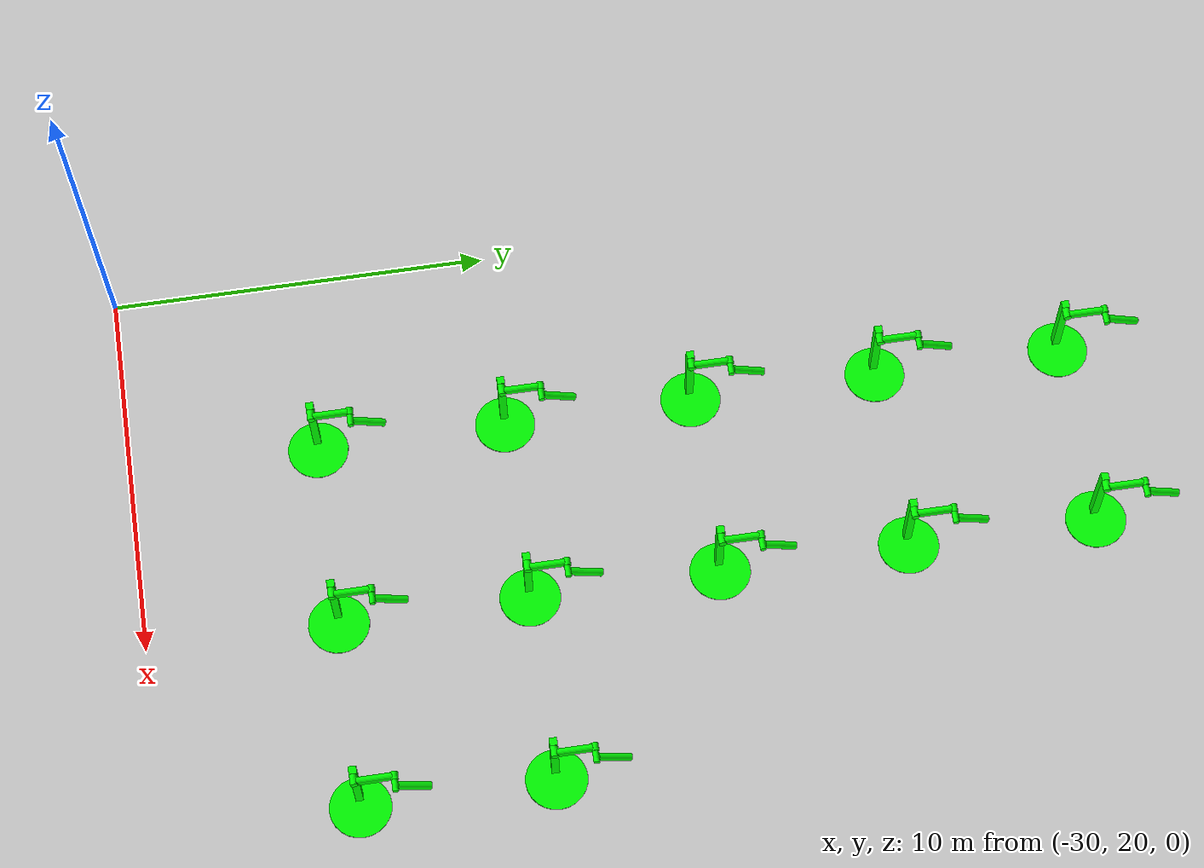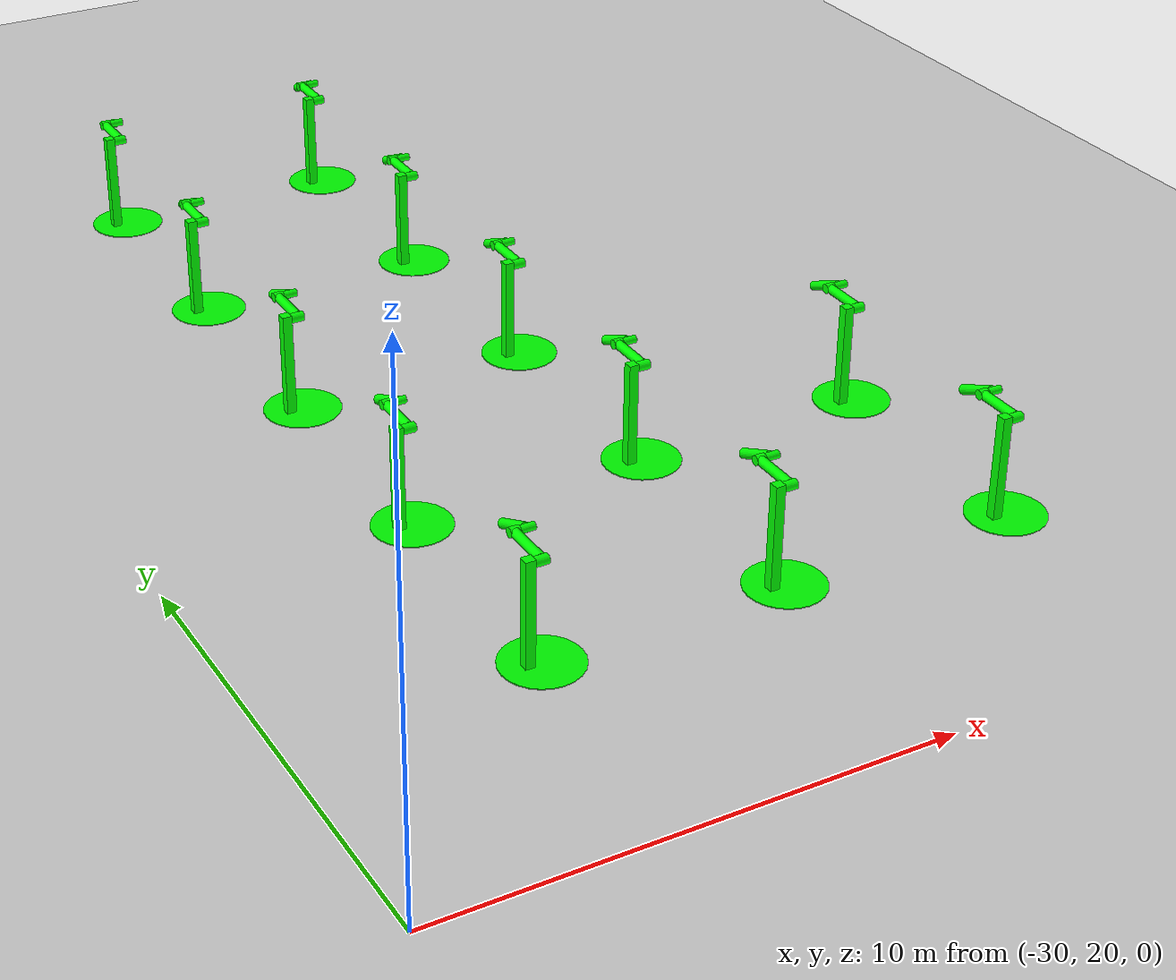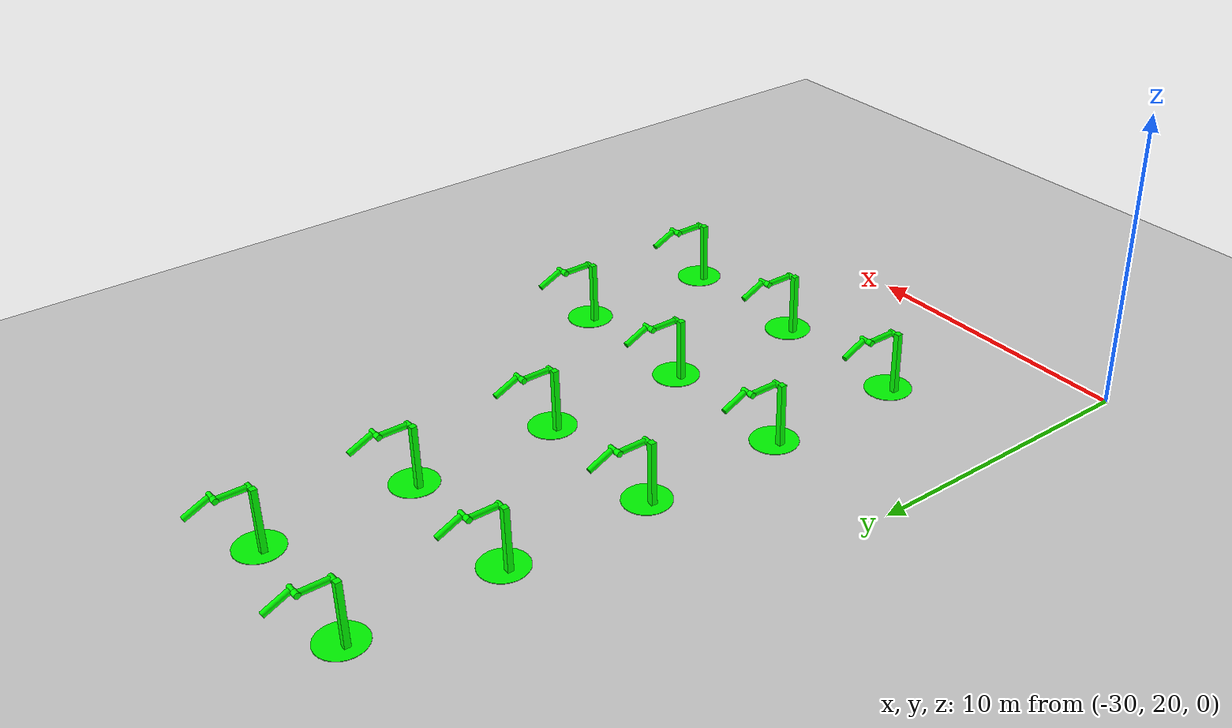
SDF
<sdf version="1.6">
 <world name="double_pendulums">
  <model name="ground_plane">
   <static>true</static>
   <link name="link">
    <collision name="collision">
     <geometry><plane><normal>0 0 1</normal><size>100 100</size></plane></geometry>
    </collision>
    <visual name="visual">
     <geometry><plane><normal>0 0 1</normal><size>100 100</size></plane></geometry>
     <material>
      <ambient>0.8 0.8 0.8 1</ambient>
      <diffuse>0.8 0.8 0.8 1</diffuse>
      <specular>0.8 0.8 0.8 1</specular>
     </material>
    </visual>
   </link>
  </model>
  <model name="dbl_pendulum_50">
   <pose>-25 25 0 0 0 0</pose>
   <link name="base">
    <inertial><mass>100</mass></inertial>
    <visual name="vis_plate_on_ground">
     <pose>0 0 0.01 0 0 0</pose>
     <geometry><cylinder><radius>0.8</radius><length>0.02</length></cylinder></geometry>
     <material><ambient>0 1 0 1</ambient><diffuse>0 1 0 1</diffuse><specular>0 1 0 1</specular></material>
    </visual>
    <visual name="vis_pole">
     <pose>-0.275 0 1.1 0 0 0</pose>
     <geometry><box><size>0.2 0.2 2.2</size></box></geometry>
     <material><ambient>0 1 0 1</ambient><diffuse>0 1 0 1</diffuse><specular>0 1 0 1</specular></material>
    </visual>
    <collision name="col_plate_on_ground">
     <pose>0 0 0.01 0 0 0</pose>
     <geometry><cylinder><radius>0.8</radius><length>0.02</length></cylinder></geometry>
    </collision>
    <collision name="col_pole">
     <pose>-0.275 0 1.1 0 0 0</pose>
     <geometry><box><size>0.2 0.2 2.2</size></box></geometry>
    </collision>
   </link>
   <link name="upper_link">
    <pose>0 0 2.1 -1.5708 0 0</pose>
    <inertial><pose>0 0 0.5 0 0 0</pose></inertial>
    <visual name="vis_upper_joint">
     <pose>-0.05 0 0 0 1.5708 0</pose>
     <geometry><cylinder><radius>0.1</radius><length>0.3</length></cylinder></geometry>
     <material><ambient>0 1 0 1</ambient><diffuse>0 1 0 1</diffuse><specular>0 1 0 1</specular></material>
    </visual>
    <visual name="vis_lower_joint">
     <pose>0 0 1.0 0 1.5708 0</pose>
     <geometry><cylinder><radius>0.1</radius><length>0.2</length></cylinder></geometry>
     <material><ambient>0 1 0 1</ambient><diffuse>0 1 0 1</diffuse><specular>0 1 0 1</specular></material>
    </visual>
    <visual name="vis_cylinder">
     <pose>0 0 0.5 0 0 0</pose>
     <geometry><cylinder><radius>0.1</radius><length>0.9</length></cylinder></geometry>
     <material><ambient>0 1 0 1</ambient><diffuse>0 1 0 1</diffuse><specular>0 1 0 1</specular></material>
    </visual>
    <collision name="col_upper_joint">
     <pose>-0.05 0 0 0 1.5708 0</pose>
     <geometry><cylinder><radius>0.1</radius><length>0.3</length></cylinder></geometry>
    </collision>
    <collision name="col_lower_joint">
     <pose>0 0 1.0 0 1.5708 0</pose>
     <geometry><cylinder><radius>0.1</radius><length>0.2</length></cylinder></geometry>
    </collision>
    <collision name="col_cylinder">
     <pose>0 0 0.5 0 0 0</pose>
     <geometry><cylinder><radius>0.1</radius><length>0.9</length></cylinder></geometry>
    </collision>
   </link>
   <link name="lower_link">
    <pose>0.25 1.0 2.1 -2 0 0</pose>
    <inertial><pose>0 0 0.5 0 0 0</pose></inertial>
    <visual name="vis_lower_joint">
     <pose>0 0 0 0 1.5708 0</pose>
     <geometry><cylinder><radius>0.08</radius><length>0.3</length></cylinder></geometry>
     <material><ambient>0 1 0 1</ambient><diffuse>0 1 0 1</diffuse><specular>0 1 0 1</specular></material>
    </visual>
    <visual name="vis_cylinder">
     <pose>0 0 0.5 0 0 0</pose>
     <geometry><cylinder><radius>0.1</radius><length>0.9</length></cylinder></geometry>
     <material><ambient>0 1 0 1</ambient><diffuse>0 1 0 1</diffuse><specular>0 1 0 1</specular></material>
    </visual>
    <collision name="col_lower_joint">
     <pose>0 0 0 0 1.5708 0</pose>
     <geometry><cylinder><radius>0.08</radius><length>0.3</length></cylinder></geometry>
    </collision>
    <collision name="col_cylinder">
     <pose>0 0 0.5 0 0 0</pose>
     <geometry><cylinder><radius>0.1</radius><length>0.9</length></cylinder></geometry>
    </collision>
   </link>
   <joint name="upper_joint" type="revolute">
    <parent>base</parent>
    <child>upper_link</child>
    <axis><xyz>1.0 0 0</xyz></axis>
   </joint>
   <joint name="lower_joint" type="revolute">
    <parent>upper_link</parent>
    <child>lower_link</child>
    <axis><xyz>1.0 0 0</xyz></axis>
   </joint>
  </model>
  <model name="dbl_pendulum_51">
   <pose>-20 25 0 0 0 0</pose>
   <link name="base">
    <inertial><mass>100</mass></inertial>
    <visual name="vis_plate_on_ground">
     <pose>0 0 0.01 0 0 0</pose>
     <geometry><cylinder><radius>0.8</radius><length>0.02</length></cylinder></geometry>
     <material><ambient>0 1 0 1</ambient><diffuse>0 1 0 1</diffuse><specular>0 1 0 1</specular></material>
    </visual>
    <visual name="vis_pole">
     <pose>-0.275 0 1.1 0 0 0</pose>
     <geometry><box><size>0.2 0.2 2.2</size></box></geometry>
     <material><ambient>0 1 0 1</ambient><diffuse>0 1 0 1</diffuse><specular>0 1 0 1</specular></material>
    </visual>
    <collision name="col_plate_on_ground">
     <pose>0 0 0.01 0 0 0</pose>
     <geometry><cylinder><radius>0.8</radius><length>0.02</length></cylinder></geometry>
    </collision>
    <collision name="col_pole">
     <pose>-0.275 0 1.1 0 0 0</pose>
     <geometry><box><size>0.2 0.2 2.2</size></box></geometry>
    </collision>
   </link>
   <link name="upper_link">
    <pose>0 0 2.1 -1.5708 0 0</pose>
    <inertial><pose>0 0 0.5 0 0 0</pose></inertial>
    <visual name="vis_upper_joint">
     <pose>-0.05 0 0 0 1.5708 0</pose>
     <geometry><cylinder><radius>0.1</radius><length>0.3</length></cylinder></geometry>
     <material><ambient>0 1 0 1</ambient><diffuse>0 1 0 1</diffuse><specular>0 1 0 1</specular></material>
    </visual>
    <visual name="vis_lower_joint">
     <pose>0 0 1.0 0 1.5708 0</pose>
     <geometry><cylinder><radius>0.1</radius><length>0.2</length></cylinder></geometry>
     <material><ambient>0 1 0 1</ambient><diffuse>0 1 0 1</diffuse><specular>0 1 0 1</specular></material>
    </visual>
    <visual name="vis_cylinder">
     <pose>0 0 0.5 0 0 0</pose>
     <geometry><cylinder><radius>0.1</radius><length>0.9</length></cylinder></geometry>
     <material><ambient>0 1 0 1</ambient><diffuse>0 1 0 1</diffuse><specular>0 1 0 1</specular></material>
    </visual>
    <collision name="col_upper_joint">
     <pose>-0.05 0 0 0 1.5708 0</pose>
     <geometry><cylinder><radius>0.1</radius><length>0.3</length></cylinder></geometry>
    </collision>
    <collision name="col_lower_joint">
     <pose>0 0 1.0 0 1.5708 0</pose>
     <geometry><cylinder><radius>0.1</radius><length>0.2</length></cylinder></geometry>
    </collision>
    <collision name="col_cylinder">
     <pose>0 0 0.5 0 0 0</pose>
     <geometry><cylinder><radius>0.1</radius><length>0.9</length></cylinder></geometry>
    </collision>
   </link>
   <link name="lower_link">
    <pose>0.25 1.0 2.1 -2 0 0</pose>
    <inertial><pose>0 0 0.5 0 0 0</pose></inertial>
    <visual name="vis_lower_joint">
     <pose>0 0 0 0 1.5708 0</pose>
     <geometry><cylinder><radius>0.08</radius><length>0.3</length></cylinder></geometry>
     <material><ambient>0 1 0 1</ambient><diffuse>0 1 0 1</diffuse><specular>0 1 0 1</specular></material>
    </visual>
    <visual name="vis_cylinder">
     <pose>0 0 0.5 0 0 0</pose>
     <geometry><cylinder><radius>0.1</radius><length>0.9</length></cylinder></geometry>
     <material><ambient>0 1 0 1</ambient><diffuse>0 1 0 1</diffuse><specular>0 1 0 1</specular></material>
    </visual>
    <collision name="col_lower_joint">
     <pose>0 0 0 0 1.5708 0</pose>
     <geometry><cylinder><radius>0.08</radius><length>0.3</length></cylinder></geometry>
    </collision>
    <collision name="col_cylinder">
     <pose>0 0 0.5 0 0 0</pose>
     <geometry><cylinder><radius>0.1</radius><length>0.9</length></cylinder></geometry>
    </collision>
   </link>
   <joint name="upper_joint" type="revolute">
    <parent>base</parent>
    <child>upper_link</child>
    <axis><xyz>1.0 0 0</xyz></axis>
   </joint>
   <joint name="lower_joint" type="revolute">
    <parent>upper_link</parent>
    <child>lower_link</child>
    <axis><xyz>1.0 0 0</xyz></axis>
   </joint>
  </model>
  <model name="dbl_pendulum_52">
   <pose>-15 25 0 0 0 0</pose>
   <link name="base">
    <inertial><mass>100</mass></inertial>
    <visual name="vis_plate_on_ground">
     <pose>0 0 0.01 0 0 0</pose>
     <geometry><cylinder><radius>0.8</radius><length>0.02</length></cylinder></geometry>
     <material><ambient>0 1 0 1</ambient><diffuse>0 1 0 1</diffuse><specular>0 1 0 1</specular></material>
    </visual>
    <visual name="vis_pole">
     <pose>-0.275 0 1.1 0 0 0</pose>
     <geometry><box><size>0.2 0.2 2.2</size></box></geometry>
     <material><ambient>0 1 0 1</ambient><diffuse>0 1 0 1</diffuse><specular>0 1 0 1</specular></material>
    </visual>
    <collision name="col_plate_on_ground">
     <pose>0 0 0.01 0 0 0</pose>
     <geometry><cylinder><radius>0.8</radius><length>0.02</length></cylinder></geometry>
    </collision>
    <collision name="col_pole">
     <pose>-0.275 0 1.1 0 0 0</pose>
     <geometry><box><size>0.2 0.2 2.2</size></box></geometry>
    </collision>
   </link>
   <link name="upper_link">
    <pose>0 0 2.1 -1.5708 0 0</pose>
    <inertial><pose>0 0 0.5 0 0 0</pose></inertial>
    <visual name="vis_upper_joint">
     <pose>-0.05 0 0 0 1.5708 0</pose>
     <geometry><cylinder><radius>0.1</radius><length>0.3</length></cylinder></geometry>
     <material><ambient>0 1 0 1</ambient><diffuse>0 1 0 1</diffuse><specular>0 1 0 1</specular></material>
    </visual>
    <visual name="vis_lower_joint">
     <pose>0 0 1.0 0 1.5708 0</pose>
     <geometry><cylinder><radius>0.1</radius><length>0.2</length></cylinder></geometry>
     <material><ambient>0 1 0 1</ambient><diffuse>0 1 0 1</diffuse><specular>0 1 0 1</specular></material>
    </visual>
    <visual name="vis_cylinder">
     <pose>0 0 0.5 0 0 0</pose>
     <geometry><cylinder><radius>0.1</radius><length>0.9</length></cylinder></geometry>
     <material><ambient>0 1 0 1</ambient><diffuse>0 1 0 1</diffuse><specular>0 1 0 1</specular></material>
    </visual>
    <collision name="col_upper_joint">
     <pose>-0.05 0 0 0 1.5708 0</pose>
     <geometry><cylinder><radius>0.1</radius><length>0.3</length></cylinder></geometry>
    </collision>
    <collision name="col_lower_joint">
     <pose>0 0 1.0 0 1.5708 0</pose>
     <geometry><cylinder><radius>0.1</radius><length>0.2</length></cylinder></geometry>
    </collision>
    <collision name="col_cylinder">
     <pose>0 0 0.5 0 0 0</pose>
     <geometry><cylinder><radius>0.1</radius><length>0.9</length></cylinder></geometry>
    </collision>
   </link>
   <link name="lower_link">
    <pose>0.25 1.0 2.1 -2 0 0</pose>
    <inertial><pose>0 0 0.5 0 0 0</pose></inertial>
    <visual name="vis_lower_joint">
     <pose>0 0 0 0 1.5708 0</pose>
     <geometry><cylinder><radius>0.08</radius><length>0.3</length></cylinder></geometry>
     <material><ambient>0 1 0 1</ambient><diffuse>0 1 0 1</diffuse><specular>0 1 0 1</specular></material>
    </visual>
    <visual name="vis_cylinder">
     <pose>0 0 0.5 0 0 0</pose>
     <geometry><cylinder><radius>0.1</radius><length>0.9</length></cylinder></geometry>
     <material><ambient>0 1 0 1</ambient><diffuse>0 1 0 1</diffuse><specular>0 1 0 1</specular></material>
    </visual>
    <collision name="col_lower_joint">
     <pose>0 0 0 0 1.5708 0</pose>
     <geometry><cylinder><radius>0.08</radius><length>0.3</length></cylinder></geometry>
    </collision>
    <collision name="col_cylinder">
     <pose>0 0 0.5 0 0 0</pose>
     <geometry><cylinder><radius>0.1</radius><length>0.9</length></cylinder></geometry>
    </collision>
   </link>
   <joint name="upper_joint" type="revolute">
    <parent>base</parent>
    <child>upper_link</child>
    <axis><xyz>1.0 0 0</xyz></axis>
   </joint>
   <joint name="lower_joint" type="revolute">
    <parent>upper_link</parent>
    <child>lower_link</child>
    <axis><xyz>1.0 0 0</xyz></axis>
   </joint>
  </model>
  <model name="dbl_pendulum_60">
   <pose>-25 30 0 0 0 0</pose>
   <link name="base">
    <inertial><mass>100</mass></inertial>
    <visual name="vis_plate_on_ground">
     <pose>0 0 0.01 0 0 0</pose>
     <geometry><cylinder><radius>0.8</radius><length>0.02</length></cylinder></geometry>
     <material><ambient>0 1 0 1</ambient><diffuse>0 1 0 1</diffuse><specular>0 1 0 1</specular></material>
    </visual>
    <visual name="vis_pole">
     <pose>-0.275 0 1.1 0 0 0</pose>
     <geometry><box><size>0.2 0.2 2.2</size></box></geometry>
     <material><ambient>0 1 0 1</ambient><diffuse>0 1 0 1</diffuse><specular>0 1 0 1</specular></material>
    </visual>
    <collision name="col_plate_on_ground">
     <pose>0 0 0.01 0 0 0</pose>
     <geometry><cylinder><radius>0.8</radius><length>0.02</length></cylinder></geometry>
    </collision>
    <collision name="col_pole">
     <pose>-0.275 0 1.1 0 0 0</pose>
     <geometry><box><size>0.2 0.2 2.2</size></box></geometry>
    </collision>
   </link>
   <link name="upper_link">
    <pose>0 0 2.1 -1.5708 0 0</pose>
    <inertial><pose>0 0 0.5 0 0 0</pose></inertial>
    <visual name="vis_upper_joint">
     <pose>-0.05 0 0 0 1.5708 0</pose>
     <geometry><cylinder><radius>0.1</radius><length>0.3</length></cylinder></geometry>
     <material><ambient>0 1 0 1</ambient><diffuse>0 1 0 1</diffuse><specular>0 1 0 1</specular></material>
    </visual>
    <visual name="vis_lower_joint">
     <pose>0 0 1.0 0 1.5708 0</pose>
     <geometry><cylinder><radius>0.1</radius><length>0.2</length></cylinder></geometry>
     <material><ambient>0 1 0 1</ambient><diffuse>0 1 0 1</diffuse><specular>0 1 0 1</specular></material>
    </visual>
    <visual name="vis_cylinder">
     <pose>0 0 0.5 0 0 0</pose>
     <geometry><cylinder><radius>0.1</radius><length>0.9</length></cylinder></geometry>
     <material><ambient>0 1 0 1</ambient><diffuse>0 1 0 1</diffuse><specular>0 1 0 1</specular></material>
    </visual>
    <collision name="col_upper_joint">
     <pose>-0.05 0 0 0 1.5708 0</pose>
     <geometry><cylinder><radius>0.1</radius><length>0.3</length></cylinder></geometry>
    </collision>
    <collision name="col_lower_joint">
     <pose>0 0 1.0 0 1.5708 0</pose>
     <geometry><cylinder><radius>0.1</radius><length>0.2</length></cylinder></geometry>
    </collision>
    <collision name="col_cylinder">
     <pose>0 0 0.5 0 0 0</pose>
     <geometry><cylinder><radius>0.1</radius><length>0.9</length></cylinder></geometry>
    </collision>
   </link>
   <link name="lower_link">
    <pose>0.25 1.0 2.1 -2 0 0</pose>
    <inertial><pose>0 0 0.5 0 0 0</pose></inertial>
    <visual name="vis_lower_joint">
     <pose>0 0 0 0 1.5708 0</pose>
     <geometry><cylinder><radius>0.08</radius><length>0.3</length></cylinder></geometry>
     <material><ambient>0 1 0 1</ambient><diffuse>0 1 0 1</diffuse><specular>0 1 0 1</specular></material>
    </visual>
    <visual name="vis_cylinder">
     <pose>0 0 0.5 0 0 0</pose>
     <geometry><cylinder><radius>0.1</radius><length>0.9</length></cylinder></geometry>
     <material><ambient>0 1 0 1</ambient><diffuse>0 1 0 1</diffuse><specular>0 1 0 1</specular></material>
    </visual>
    <collision name="col_lower_joint">
     <pose>0 0 0 0 1.5708 0</pose>
     <geometry><cylinder><radius>0.08</radius><length>0.3</length></cylinder></geometry>
    </collision>
    <collision name="col_cylinder">
     <pose>0 0 0.5 0 0 0</pose>
     <geometry><cylinder><radius>0.1</radius><length>0.9</length></cylinder></geometry>
    </collision>
   </link>
   <joint name="upper_joint" type="revolute">
    <parent>base</parent>
    <child>upper_link</child>
    <axis><xyz>1.0 0 0</xyz></axis>
   </joint>
   <joint name="lower_joint" type="revolute">
    <parent>upper_link</parent>
    <child>lower_link</child>
    <axis><xyz>1.0 0 0</xyz></axis>
   </joint>
  </model>
  <model name="dbl_pendulum_61">
   <pose>-20 30 0 0 0 0</pose>
   <link name="base">
    <inertial><mass>100</mass></inertial>
    <visual name="vis_plate_on_ground">
     <pose>0 0 0.01 0 0 0</pose>
     <geometry><cylinder><radius>0.8</radius><length>0.02</length></cylinder></geometry>
     <material><ambient>0 1 0 1</ambient><diffuse>0 1 0 1</diffuse><specular>0 1 0 1</specular></material>
    </visual>
    <visual name="vis_pole">
     <pose>-0.275 0 1.1 0 0 0</pose>
     <geometry><box><size>0.2 0.2 2.2</size></box></geometry>
     <material><ambient>0 1 0 1</ambient><diffuse>0 1 0 1</diffuse><specular>0 1 0 1</specular></material>
    </visual>
    <collision name="col_plate_on_ground">
     <pose>0 0 0.01 0 0 0</pose>
     <geometry><cylinder><radius>0.8</radius><length>0.02</length></cylinder></geometry>
    </collision>
    <collision name="col_pole">
     <pose>-0.275 0 1.1 0 0 0</pose>
     <geometry><box><size>0.2 0.2 2.2</size></box></geometry>
    </collision>
   </link>
   <link name="upper_link">
    <pose>0 0 2.1 -1.5708 0 0</pose>
    <inertial><pose>0 0 0.5 0 0 0</pose></inertial>
    <visual name="vis_upper_joint">
     <pose>-0.05 0 0 0 1.5708 0</pose>
     <geometry><cylinder><radius>0.1</radius><length>0.3</length></cylinder></geometry>
     <material><ambient>0 1 0 1</ambient><diffuse>0 1 0 1</diffuse><specular>0 1 0 1</specular></material>
    </visual>
    <visual name="vis_lower_joint">
     <pose>0 0 1.0 0 1.5708 0</pose>
     <geometry><cylinder><radius>0.1</radius><length>0.2</length></cylinder></geometry>
     <material><ambient>0 1 0 1</ambient><diffuse>0 1 0 1</diffuse><specular>0 1 0 1</specular></material>
    </visual>
    <visual name="vis_cylinder">
     <pose>0 0 0.5 0 0 0</pose>
     <geometry><cylinder><radius>0.1</radius><length>0.9</length></cylinder></geometry>
     <material><ambient>0 1 0 1</ambient><diffuse>0 1 0 1</diffuse><specular>0 1 0 1</specular></material>
    </visual>
    <collision name="col_upper_joint">
     <pose>-0.05 0 0 0 1.5708 0</pose>
     <geometry><cylinder><radius>0.1</radius><length>0.3</length></cylinder></geometry>
    </collision>
    <collision name="col_lower_joint">
     <pose>0 0 1.0 0 1.5708 0</pose>
     <geometry><cylinder><radius>0.1</radius><length>0.2</length></cylinder></geometry>
    </collision>
    <collision name="col_cylinder">
     <pose>0 0 0.5 0 0 0</pose>
     <geometry><cylinder><radius>0.1</radius><length>0.9</length></cylinder></geometry>
    </collision>
   </link>
   <link name="lower_link">
    <pose>0.25 1.0 2.1 -2 0 0</pose>
    <inertial><pose>0 0 0.5 0 0 0</pose></inertial>
    <visual name="vis_lower_joint">
     <pose>0 0 0 0 1.5708 0</pose>
     <geometry><cylinder><radius>0.08</radius><length>0.3</length></cylinder></geometry>
     <material><ambient>0 1 0 1</ambient><diffuse>0 1 0 1</diffuse><specular>0 1 0 1</specular></material>
    </visual>
    <visual name="vis_cylinder">
     <pose>0 0 0.5 0 0 0</pose>
     <geometry><cylinder><radius>0.1</radius><length>0.9</length></cylinder></geometry>
     <material><ambient>0 1 0 1</ambient><diffuse>0 1 0 1</diffuse><specular>0 1 0 1</specular></material>
    </visual>
    <collision name="col_lower_joint">
     <pose>0 0 0 0 1.5708 0</pose>
     <geometry><cylinder><radius>0.08</radius><length>0.3</length></cylinder></geometry>
    </collision>
    <collision name="col_cylinder">
     <pose>0 0 0.5 0 0 0</pose>
     <geometry><cylinder><radius>0.1</radius><length>0.9</length></cylinder></geometry>
    </collision>
   </link>
   <joint name="upper_joint" type="revolute">
    <parent>base</parent>
    <child>upper_link</child>
    <axis><xyz>1.0 0 0</xyz></axis>
   </joint>
   <joint name="lower_joint" type="revolute">
    <parent>upper_link</parent>
    <child>lower_link</child>
    <axis><xyz>1.0 0 0</xyz></axis>
   </joint>
  </model>
  <model name="dbl_pendulum_62">
   <pose>-15 30 0 0 0 0</pose>
   <link name="base">
    <inertial><mass>100</mass></inertial>
    <visual name="vis_plate_on_ground">
     <pose>0 0 0.01 0 0 0</pose>
     <geometry><cylinder><radius>0.8</radius><length>0.02</length></cylinder></geometry>
     <material><ambient>0 1 0 1</ambient><diffuse>0 1 0 1</diffuse><specular>0 1 0 1</specular></material>
    </visual>
    <visual name="vis_pole">
     <pose>-0.275 0 1.1 0 0 0</pose>
     <geometry><box><size>0.2 0.2 2.2</size></box></geometry>
     <material><ambient>0 1 0 1</ambient><diffuse>0 1 0 1</diffuse><specular>0 1 0 1</specular></material>
    </visual>
    <collision name="col_plate_on_ground">
     <pose>0 0 0.01 0 0 0</pose>
     <geometry><cylinder><radius>0.8</radius><length>0.02</length></cylinder></geometry>
    </collision>
    <collision name="col_pole">
     <pose>-0.275 0 1.1 0 0 0</pose>
     <geometry><box><size>0.2 0.2 2.2</size></box></geometry>
    </collision>
   </link>
   <link name="upper_link">
    <pose>0 0 2.1 -1.5708 0 0</pose>
    <inertial><pose>0 0 0.5 0 0 0</pose></inertial>
    <visual name="vis_upper_joint">
     <pose>-0.05 0 0 0 1.5708 0</pose>
     <geometry><cylinder><radius>0.1</radius><length>0.3</length></cylinder></geometry>
     <material><ambient>0 1 0 1</ambient><diffuse>0 1 0 1</diffuse><specular>0 1 0 1</specular></material>
    </visual>
    <visual name="vis_lower_joint">
     <pose>0 0 1.0 0 1.5708 0</pose>
     <geometry><cylinder><radius>0.1</radius><length>0.2</length></cylinder></geometry>
     <material><ambient>0 1 0 1</ambient><diffuse>0 1 0 1</diffuse><specular>0 1 0 1</specular></material>
    </visual>
    <visual name="vis_cylinder">
     <pose>0 0 0.5 0 0 0</pose>
     <geometry><cylinder><radius>0.1</radius><length>0.9</length></cylinder></geometry>
     <material><ambient>0 1 0 1</ambient><diffuse>0 1 0 1</diffuse><specular>0 1 0 1</specular></material>
    </visual>
    <collision name="col_upper_joint">
     <pose>-0.05 0 0 0 1.5708 0</pose>
     <geometry><cylinder><radius>0.1</radius><length>0.3</length></cylinder></geometry>
    </collision>
    <collision name="col_lower_joint">
     <pose>0 0 1.0 0 1.5708 0</pose>
     <geometry><cylinder><radius>0.1</radius><length>0.2</length></cylinder></geometry>
    </collision>
    <collision name="col_cylinder">
     <pose>0 0 0.5 0 0 0</pose>
     <geometry><cylinder><radius>0.1</radius><length>0.9</length></cylinder></geometry>
    </collision>
   </link>
   <link name="lower_link">
    <pose>0.25 1.0 2.1 -2 0 0</pose>
    <inertial><pose>0 0 0.5 0 0 0</pose></inertial>
    <visual name="vis_lower_joint">
     <pose>0 0 0 0 1.5708 0</pose>
     <geometry><cylinder><radius>0.08</radius><length>0.3</length></cylinder></geometry>
     <material><ambient>0 1 0 1</ambient><diffuse>0 1 0 1</diffuse><specular>0 1 0 1</specular></material>
    </visual>
    <visual name="vis_cylinder">
     <pose>0 0 0.5 0 0 0</pose>
     <geometry><cylinder><radius>0.1</radius><length>0.9</length></cylinder></geometry>
     <material><ambient>0 1 0 1</ambient><diffuse>0 1 0 1</diffuse><specular>0 1 0 1</specular></material>
    </visual>
    <collision name="col_lower_joint">
     <pose>0 0 0 0 1.5708 0</pose>
     <geometry><cylinder><radius>0.08</radius><length>0.3</length></cylinder></geometry>
    </collision>
    <collision name="col_cylinder">
     <pose>0 0 0.5 0 0 0</pose>
     <geometry><cylinder><radius>0.1</radius><length>0.9</length></cylinder></geometry>
    </collision>
   </link>
   <joint name="upper_joint" type="revolute">
    <parent>base</parent>
    <child>upper_link</child>
    <axis><xyz>1.0 0 0</xyz></axis>
   </joint>
   <joint name="lower_joint" type="revolute">
    <parent>upper_link</parent>
    <child>lower_link</child>
    <axis><xyz>1.0 0 0</xyz></axis>
   </joint>
  </model>
  <model name="dbl_pendulum_70">
   <pose>-25 35 0 0 0 0</pose>
   <link name="base">
    <inertial><mass>100</mass></inertial>
    <visual name="vis_plate_on_ground">
     <pose>0 0 0.01 0 0 0</pose>
     <geometry><cylinder><radius>0.8</radius><length>0.02</length></cylinder></geometry>
     <material><ambient>0 1 0 1</ambient><diffuse>0 1 0 1</diffuse><specular>0 1 0 1</specular></material>
    </visual>
    <visual name="vis_pole">
     <pose>-0.275 0 1.1 0 0 0</pose>
     <geometry><box><size>0.2 0.2 2.2</size></box></geometry>
     <material><ambient>0 1 0 1</ambient><diffuse>0 1 0 1</diffuse><specular>0 1 0 1</specular></material>
    </visual>
    <collision name="col_plate_on_ground">
     <pose>0 0 0.01 0 0 0</pose>
     <geometry><cylinder><radius>0.8</radius><length>0.02</length></cylinder></geometry>
    </collision>
    <collision name="col_pole">
     <pose>-0.275 0 1.1 0 0 0</pose>
     <geometry><box><size>0.2 0.2 2.2</size></box></geometry>
    </collision>
   </link>
   <link name="upper_link">
    <pose>0 0 2.1 -1.5708 0 0</pose>
    <inertial><pose>0 0 0.5 0 0 0</pose></inertial>
    <visual name="vis_upper_joint">
     <pose>-0.05 0 0 0 1.5708 0</pose>
     <geometry><cylinder><radius>0.1</radius><length>0.3</length></cylinder></geometry>
     <material><ambient>0 1 0 1</ambient><diffuse>0 1 0 1</diffuse><specular>0 1 0 1</specular></material>
    </visual>
    <visual name="vis_lower_joint">
     <pose>0 0 1.0 0 1.5708 0</pose>
     <geometry><cylinder><radius>0.1</radius><length>0.2</length></cylinder></geometry>
     <material><ambient>0 1 0 1</ambient><diffuse>0 1 0 1</diffuse><specular>0 1 0 1</specular></material>
    </visual>
    <visual name="vis_cylinder">
     <pose>0 0 0.5 0 0 0</pose>
     <geometry><cylinder><radius>0.1</radius><length>0.9</length></cylinder></geometry>
     <material><ambient>0 1 0 1</ambient><diffuse>0 1 0 1</diffuse><specular>0 1 0 1</specular></material>
    </visual>
    <collision name="col_upper_joint">
     <pose>-0.05 0 0 0 1.5708 0</pose>
     <geometry><cylinder><radius>0.1</radius><length>0.3</length></cylinder></geometry>
    </collision>
    <collision name="col_lower_joint">
     <pose>0 0 1.0 0 1.5708 0</pose>
     <geometry><cylinder><radius>0.1</radius><length>0.2</length></cylinder></geometry>
    </collision>
    <collision name="col_cylinder">
     <pose>0 0 0.5 0 0 0</pose>
     <geometry><cylinder><radius>0.1</radius><length>0.9</length></cylinder></geometry>
    </collision>
   </link>
   <link name="lower_link">
    <pose>0.25 1.0 2.1 -2 0 0</pose>
    <inertial><pose>0 0 0.5 0 0 0</pose></inertial>
    <visual name="vis_lower_joint">
     <pose>0 0 0 0 1.5708 0</pose>
     <geometry><cylinder><radius>0.08</radius><length>0.3</length></cylinder></geometry>
     <material><ambient>0 1 0 1</ambient><diffuse>0 1 0 1</diffuse><specular>0 1 0 1</specular></material>
    </visual>
    <visual name="vis_cylinder">
     <pose>0 0 0.5 0 0 0</pose>
     <geometry><cylinder><radius>0.1</radius><length>0.9</length></cylinder></geometry>
     <material><ambient>0 1 0 1</ambient><diffuse>0 1 0 1</diffuse><specular>0 1 0 1</specular></material>
    </visual>
    <collision name="col_lower_joint">
     <pose>0 0 0 0 1.5708 0</pose>
     <geometry><cylinder><radius>0.08</radius><length>0.3</length></cylinder></geometry>
    </collision>
    <collision name="col_cylinder">
     <pose>0 0 0.5 0 0 0</pose>
     <geometry><cylinder><radius>0.1</radius><length>0.9</length></cylinder></geometry>
    </collision>
   </link>
   <joint name="upper_joint" type="revolute">
    <parent>base</parent>
    <child>upper_link</child>
    <axis><xyz>1.0 0 0</xyz></axis>
   </joint>
   <joint name="lower_joint" type="revolute">
    <parent>upper_link</parent>
    <child>lower_link</child>
    <axis><xyz>1.0 0 0</xyz></axis>
   </joint>
  </model>
  <model name="dbl_pendulum_71">
   <pose>-20 35 0 0 0 0</pose>
   <link name="base">
    <inertial><mass>100</mass></inertial>
    <visual name="vis_plate_on_ground">
     <pose>0 0 0.01 0 0 0</pose>
     <geometry><cylinder><radius>0.8</radius><length>0.02</length></cylinder></geometry>
     <material><ambient>0 1 0 1</ambient><diffuse>0 1 0 1</diffuse><specular>0 1 0 1</specular></material>
    </visual>
    <visual name="vis_pole">
     <pose>-0.275 0 1.1 0 0 0</pose>
     <geometry><box><size>0.2 0.2 2.2</size></box></geometry>
     <material><ambient>0 1 0 1</ambient><diffuse>0 1 0 1</diffuse><specular>0 1 0 1</specular></material>
    </visual>
    <collision name="col_plate_on_ground">
     <pose>0 0 0.01 0 0 0</pose>
     <geometry><cylinder><radius>0.8</radius><length>0.02</length></cylinder></geometry>
    </collision>
    <collision name="col_pole">
     <pose>-0.275 0 1.1 0 0 0</pose>
     <geometry><box><size>0.2 0.2 2.2</size></box></geometry>
    </collision>
   </link>
   <link name="upper_link">
    <pose>0 0 2.1 -1.5708 0 0</pose>
    <inertial><pose>0 0 0.5 0 0 0</pose></inertial>
    <visual name="vis_upper_joint">
     <pose>-0.05 0 0 0 1.5708 0</pose>
     <geometry><cylinder><radius>0.1</radius><length>0.3</length></cylinder></geometry>
     <material><ambient>0 1 0 1</ambient><diffuse>0 1 0 1</diffuse><specular>0 1 0 1</specular></material>
    </visual>
    <visual name="vis_lower_joint">
     <pose>0 0 1.0 0 1.5708 0</pose>
     <geometry><cylinder><radius>0.1</radius><length>0.2</length></cylinder></geometry>
     <material><ambient>0 1 0 1</ambient><diffuse>0 1 0 1</diffuse><specular>0 1 0 1</specular></material>
    </visual>
    <visual name="vis_cylinder">
     <pose>0 0 0.5 0 0 0</pose>
     <geometry><cylinder><radius>0.1</radius><length>0.9</length></cylinder></geometry>
     <material><ambient>0 1 0 1</ambient><diffuse>0 1 0 1</diffuse><specular>0 1 0 1</specular></material>
    </visual>
    <collision name="col_upper_joint">
     <pose>-0.05 0 0 0 1.5708 0</pose>
     <geometry><cylinder><radius>0.1</radius><length>0.3</length></cylinder></geometry>
    </collision>
    <collision name="col_lower_joint">
     <pose>0 0 1.0 0 1.5708 0</pose>
     <geometry><cylinder><radius>0.1</radius><length>0.2</length></cylinder></geometry>
    </collision>
    <collision name="col_cylinder">
     <pose>0 0 0.5 0 0 0</pose>
     <geometry><cylinder><radius>0.1</radius><length>0.9</length></cylinder></geometry>
    </collision>
   </link>
   <link name="lower_link">
    <pose>0.25 1.0 2.1 -2 0 0</pose>
    <inertial><pose>0 0 0.5 0 0 0</pose></inertial>
    <visual name="vis_lower_joint">
     <pose>0 0 0 0 1.5708 0</pose>
     <geometry><cylinder><radius>0.08</radius><length>0.3</length></cylinder></geometry>
     <material><ambient>0 1 0 1</ambient><diffuse>0 1 0 1</diffuse><specular>0 1 0 1</specular></material>
    </visual>
    <visual name="vis_cylinder">
     <pose>0 0 0.5 0 0 0</pose>
     <geometry><cylinder><radius>0.1</radius><length>0.9</length></cylinder></geometry>
     <material><ambient>0 1 0 1</ambient><diffuse>0 1 0 1</diffuse><specular>0 1 0 1</specular></material>
    </visual>
    <collision name="col_lower_joint">
     <pose>0 0 0 0 1.5708 0</pose>
     <geometry><cylinder><radius>0.08</radius><length>0.3</length></cylinder></geometry>
    </collision>
    <collision name="col_cylinder">
     <pose>0 0 0.5 0 0 0</pose>
     <geometry><cylinder><radius>0.1</radius><length>0.9</length></cylinder></geometry>
    </collision>
   </link>
   <joint name="upper_joint" type="revolute">
    <parent>base</parent>
    <child>upper_link</child>
    <axis><xyz>1.0 0 0</xyz></axis>
   </joint>
   <joint name="lower_joint" type="revolute">
    <parent>upper_link</parent>
    <child>lower_link</child>
    <axis><xyz>1.0 0 0</xyz></axis>
   </joint>
  </model>
  <model name="dbl_pendulum_80">
   <pose>-25 40 0 0 0 0</pose>
   <link name="base">
    <inertial><mass>100</mass></inertial>
    <visual name="vis_plate_on_ground">
     <pose>0 0 0.01 0 0 0</pose>
     <geometry><cylinder><radius>0.8</radius><length>0.02</length></cylinder></geometry>
     <material><ambient>0 1 0 1</ambient><diffuse>0 1 0 1</diffuse><specular>0 1 0 1</specular></material>
    </visual>
    <visual name="vis_pole">
     <pose>-0.275 0 1.1 0 0 0</pose>
     <geometry><box><size>0.2 0.2 2.2</size></box></geometry>
     <material><ambient>0 1 0 1</ambient><diffuse>0 1 0 1</diffuse><specular>0 1 0 1</specular></material>
    </visual>
    <collision name="col_plate_on_ground">
     <pose>0 0 0.01 0 0 0</pose>
     <geometry><cylinder><radius>0.8</radius><length>0.02</length></cylinder></geometry>
    </collision>
    <collision name="col_pole">
     <pose>-0.275 0 1.1 0 0 0</pose>
     <geometry><box><size>0.2 0.2 2.2</size></box></geometry>
    </collision>
   </link>
   <link name="upper_link">
    <pose>0 0 2.1 -1.5708 0 0</pose>
    <inertial><pose>0 0 0.5 0 0 0</pose></inertial>
    <visual name="vis_upper_joint">
     <pose>-0.05 0 0 0 1.5708 0</pose>
     <geometry><cylinder><radius>0.1</radius><length>0.3</length></cylinder></geometry>
     <material><ambient>0 1 0 1</ambient><diffuse>0 1 0 1</diffuse><specular>0 1 0 1</specular></material>
    </visual>
    <visual name="vis_lower_joint">
     <pose>0 0 1.0 0 1.5708 0</pose>
     <geometry><cylinder><radius>0.1</radius><length>0.2</length></cylinder></geometry>
     <material><ambient>0 1 0 1</ambient><diffuse>0 1 0 1</diffuse><specular>0 1 0 1</specular></material>
    </visual>
    <visual name="vis_cylinder">
     <pose>0 0 0.5 0 0 0</pose>
     <geometry><cylinder><radius>0.1</radius><length>0.9</length></cylinder></geometry>
     <material><ambient>0 1 0 1</ambient><diffuse>0 1 0 1</diffuse><specular>0 1 0 1</specular></material>
    </visual>
    <collision name="col_upper_joint">
     <pose>-0.05 0 0 0 1.5708 0</pose>
     <geometry><cylinder><radius>0.1</radius><length>0.3</length></cylinder></geometry>
    </collision>
    <collision name="col_lower_joint">
     <pose>0 0 1.0 0 1.5708 0</pose>
     <geometry><cylinder><radius>0.1</radius><length>0.2</length></cylinder></geometry>
    </collision>
    <collision name="col_cylinder">
     <pose>0 0 0.5 0 0 0</pose>
     <geometry><cylinder><radius>0.1</radius><length>0.9</length></cylinder></geometry>
    </collision>
   </link>
   <link name="lower_link">
    <pose>0.25 1.0 2.1 -2 0 0</pose>
    <inertial><pose>0 0 0.5 0 0 0</pose></inertial>
    <visual name="vis_lower_joint">
     <pose>0 0 0 0 1.5708 0</pose>
     <geometry><cylinder><radius>0.08</radius><length>0.3</length></cylinder></geometry>
     <material><ambient>0 1 0 1</ambient><diffuse>0 1 0 1</diffuse><specular>0 1 0 1</specular></material>
    </visual>
    <visual name="vis_cylinder">
     <pose>0 0 0.5 0 0 0</pose>
     <geometry><cylinder><radius>0.1</radius><length>0.9</length></cylinder></geometry>
     <material><ambient>0 1 0 1</ambient><diffuse>0 1 0 1</diffuse><specular>0 1 0 1</specular></material>
    </visual>
    <collision name="col_lower_joint">
     <pose>0 0 0 0 1.5708 0</pose>
     <geometry><cylinder><radius>0.08</radius><length>0.3</length></cylinder></geometry>
    </collision>
    <collision name="col_cylinder">
     <pose>0 0 0.5 0 0 0</pose>
     <geometry><cylinder><radius>0.1</radius><length>0.9</length></cylinder></geometry>
    </collision>
   </link>
   <joint name="upper_joint" type="revolute">
    <parent>base</parent>
    <child>upper_link</child>
    <axis><xyz>1.0 0 0</xyz></axis>
   </joint>
   <joint name="lower_joint" type="revolute">
    <parent>upper_link</parent>
    <child>lower_link</child>
    <axis><xyz>1.0 0 0</xyz></axis>
   </joint>
  </model>
  <model name="dbl_pendulum_81">
   <pose>-20 40 0 0 0 0</pose>
   <link name="base">
    <inertial><mass>100</mass></inertial>
    <visual name="vis_plate_on_ground">
     <pose>0 0 0.01 0 0 0</pose>
     <geometry><cylinder><radius>0.8</radius><length>0.02</length></cylinder></geometry>
     <material><ambient>0 1 0 1</ambient><diffuse>0 1 0 1</diffuse><specular>0 1 0 1</specular></material>
    </visual>
    <visual name="vis_pole">
     <pose>-0.275 0 1.1 0 0 0</pose>
     <geometry><box><size>0.2 0.2 2.2</size></box></geometry>
     <material><ambient>0 1 0 1</ambient><diffuse>0 1 0 1</diffuse><specular>0 1 0 1</specular></material>
    </visual>
    <collision name="col_plate_on_ground">
     <pose>0 0 0.01 0 0 0</pose>
     <geometry><cylinder><radius>0.8</radius><length>0.02</length></cylinder></geometry>
    </collision>
    <collision name="col_pole">
     <pose>-0.275 0 1.1 0 0 0</pose>
     <geometry><box><size>0.2 0.2 2.2</size></box></geometry>
    </collision>
   </link>
   <link name="upper_link">
    <pose>0 0 2.1 -1.5708 0 0</pose>
    <inertial><pose>0 0 0.5 0 0 0</pose></inertial>
    <visual name="vis_upper_joint">
     <pose>-0.05 0 0 0 1.5708 0</pose>
     <geometry><cylinder><radius>0.1</radius><length>0.3</length></cylinder></geometry>
     <material><ambient>0 1 0 1</ambient><diffuse>0 1 0 1</diffuse><specular>0 1 0 1</specular></material>
    </visual>
    <visual name="vis_lower_joint">
     <pose>0 0 1.0 0 1.5708 0</pose>
     <geometry><cylinder><radius>0.1</radius><length>0.2</length></cylinder></geometry>
     <material><ambient>0 1 0 1</ambient><diffuse>0 1 0 1</diffuse><specular>0 1 0 1</specular></material>
    </visual>
    <visual name="vis_cylinder">
     <pose>0 0 0.5 0 0 0</pose>
     <geometry><cylinder><radius>0.1</radius><length>0.9</length></cylinder></geometry>
     <material><ambient>0 1 0 1</ambient><diffuse>0 1 0 1</diffuse><specular>0 1 0 1</specular></material>
    </visual>
    <collision name="col_upper_joint">
     <pose>-0.05 0 0 0 1.5708 0</pose>
     <geometry><cylinder><radius>0.1</radius><length>0.3</length></cylinder></geometry>
    </collision>
    <collision name="col_lower_joint">
     <pose>0 0 1.0 0 1.5708 0</pose>
     <geometry><cylinder><radius>0.1</radius><length>0.2</length></cylinder></geometry>
    </collision>
    <collision name="col_cylinder">
     <pose>0 0 0.5 0 0 0</pose>
     <geometry><cylinder><radius>0.1</radius><length>0.9</length></cylinder></geometry>
    </collision>
   </link>
   <link name="lower_link">
    <pose>0.25 1.0 2.1 -2 0 0</pose>
    <inertial><pose>0 0 0.5 0 0 0</pose></inertial>
    <visual name="vis_lower_joint">
     <pose>0 0 0 0 1.5708 0</pose>
     <geometry><cylinder><radius>0.08</radius><length>0.3</length></cylinder></geometry>
     <material><ambient>0 1 0 1</ambient><diffuse>0 1 0 1</diffuse><specular>0 1 0 1</specular></material>
    </visual>
    <visual name="vis_cylinder">
     <pose>0 0 0.5 0 0 0</pose>
     <geometry><cylinder><radius>0.1</radius><length>0.9</length></cylinder></geometry>
     <material><ambient>0 1 0 1</ambient><diffuse>0 1 0 1</diffuse><specular>0 1 0 1</specular></material>
    </visual>
    <collision name="col_lower_joint">
     <pose>0 0 0 0 1.5708 0</pose>
     <geometry><cylinder><radius>0.08</radius><length>0.3</length></cylinder></geometry>
    </collision>
    <collision name="col_cylinder">
     <pose>0 0 0.5 0 0 0</pose>
     <geometry><cylinder><radius>0.1</radius><length>0.9</length></cylinder></geometry>
    </collision>
   </link>
   <joint name="upper_joint" type="revolute">
    <parent>base</parent>
    <child>upper_link</child>
    <axis><xyz>1.0 0 0</xyz></axis>
   </joint>
   <joint name="lower_joint" type="revolute">
    <parent>upper_link</parent>
    <child>lower_link</child>
    <axis><xyz>1.0 0 0</xyz></axis>
   </joint>
  </model>
  <model name="dbl_pendulum_90">
   <pose>-25 45 0 0 0 0</pose>
   <link name="base">
    <inertial><mass>100</mass></inertial>
    <visual name="vis_plate_on_ground">
     <pose>0 0 0.01 0 0 0</pose>
     <geometry><cylinder><radius>0.8</radius><length>0.02</length></cylinder></geometry>
     <material><ambient>0 1 0 1</ambient><diffuse>0 1 0 1</diffuse><specular>0 1 0 1</specular></material>
    </visual>
    <visual name="vis_pole">
     <pose>-0.275 0 1.1 0 0 0</pose>
     <geometry><box><size>0.2 0.2 2.2</size></box></geometry>
     <material><ambient>0 1 0 1</ambient><diffuse>0 1 0 1</diffuse><specular>0 1 0 1</specular></material>
    </visual>
    <collision name="col_plate_on_ground">
     <pose>0 0 0.01 0 0 0</pose>
     <geometry><cylinder><radius>0.8</radius><length>0.02</length></cylinder></geometry>
    </collision>
    <collision name="col_pole">
     <pose>-0.275 0 1.1 0 0 0</pose>
     <geometry><box><size>0.2 0.2 2.2</size></box></geometry>
    </collision>
   </link>
   <link name="upper_link">
    <pose>0 0 2.1 -1.5708 0 0</pose>
    <inertial><pose>0 0 0.5 0 0 0</pose></inertial>
    <visual name="vis_upper_joint">
     <pose>-0.05 0 0 0 1.5708 0</pose>
     <geometry><cylinder><radius>0.1</radius><length>0.3</length></cylinder></geometry>
     <material><ambient>0 1 0 1</ambient><diffuse>0 1 0 1</diffuse><specular>0 1 0 1</specular></material>
    </visual>
    <visual name="vis_lower_joint">
     <pose>0 0 1.0 0 1.5708 0</pose>
     <geometry><cylinder><radius>0.1</radius><length>0.2</length></cylinder></geometry>
     <material><ambient>0 1 0 1</ambient><diffuse>0 1 0 1</diffuse><specular>0 1 0 1</specular></material>
    </visual>
    <visual name="vis_cylinder">
     <pose>0 0 0.5 0 0 0</pose>
     <geometry><cylinder><radius>0.1</radius><length>0.9</length></cylinder></geometry>
     <material><ambient>0 1 0 1</ambient><diffuse>0 1 0 1</diffuse><specular>0 1 0 1</specular></material>
    </visual>
    <collision name="col_upper_joint">
     <pose>-0.05 0 0 0 1.5708 0</pose>
     <geometry><cylinder><radius>0.1</radius><length>0.3</length></cylinder></geometry>
    </collision>
    <collision name="col_lower_joint">
     <pose>0 0 1.0 0 1.5708 0</pose>
     <geometry><cylinder><radius>0.1</radius><length>0.2</length></cylinder></geometry>
    </collision>
    <collision name="col_cylinder">
     <pose>0 0 0.5 0 0 0</pose>
     <geometry><cylinder><radius>0.1</radius><length>0.9</length></cylinder></geometry>
    </collision>
   </link>
   <link name="lower_link">
    <pose>0.25 1.0 2.1 -2 0 0</pose>
    <inertial><pose>0 0 0.5 0 0 0</pose></inertial>
    <visual name="vis_lower_joint">
     <pose>0 0 0 0 1.5708 0</pose>
     <geometry><cylinder><radius>0.08</radius><length>0.3</length></cylinder></geometry>
     <material><ambient>0 1 0 1</ambient><diffuse>0 1 0 1</diffuse><specular>0 1 0 1</specular></material>
    </visual>
    <visual name="vis_cylinder">
     <pose>0 0 0.5 0 0 0</pose>
     <geometry><cylinder><radius>0.1</radius><length>0.9</length></cylinder></geometry>
     <material><ambient>0 1 0 1</ambient><diffuse>0 1 0 1</diffuse><specular>0 1 0 1</specular></material>
    </visual>
    <collision name="col_lower_joint">
     <pose>0 0 0 0 1.5708 0</pose>
     <geometry><cylinder><radius>0.08</radius><length>0.3</length></cylinder></geometry>
    </collision>
    <collision name="col_cylinder">
     <pose>0 0 0.5 0 0 0</pose>
     <geometry><cylinder><radius>0.1</radius><length>0.9</length></cylinder></geometry>
    </collision>
   </link>
   <joint name="upper_joint" type="revolute">
    <parent>base</parent>
    <child>upper_link</child>
    <axis><xyz>1.0 0 0</xyz></axis>
   </joint>
   <joint name="lower_joint" type="revolute">
    <parent>upper_link</parent>
    <child>lower_link</child>
    <axis><xyz>1.0 0 0</xyz></axis>
   </joint>
  </model>
  <model name="dbl_pendulum_91">
   <pose>-20 45 0 0 0 0</pose>
   <link name="base">
    <inertial><mass>100</mass></inertial>
    <visual name="vis_plate_on_ground">
     <pose>0 0 0.01 0 0 0</pose>
     <geometry><cylinder><radius>0.8</radius><length>0.02</length></cylinder></geometry>
     <material><ambient>0 1 0 1</ambient><diffuse>0 1 0 1</diffuse><specular>0 1 0 1</specular></material>
    </visual>
    <visual name="vis_pole">
     <pose>-0.275 0 1.1 0 0 0</pose>
     <geometry><box><size>0.2 0.2 2.2</size></box></geometry>
     <material><ambient>0 1 0 1</ambient><diffuse>0 1 0 1</diffuse><specular>0 1 0 1</specular></material>
    </visual>
    <collision name="col_plate_on_ground">
     <pose>0 0 0.01 0 0 0</pose>
     <geometry><cylinder><radius>0.8</radius><length>0.02</length></cylinder></geometry>
    </collision>
    <collision name="col_pole">
     <pose>-0.275 0 1.1 0 0 0</pose>
     <geometry><box><size>0.2 0.2 2.2</size></box></geometry>
    </collision>
   </link>
   <link name="upper_link">
    <pose>0 0 2.1 -1.5708 0 0</pose>
    <inertial><pose>0 0 0.5 0 0 0</pose></inertial>
    <visual name="vis_upper_joint">
     <pose>-0.05 0 0 0 1.5708 0</pose>
     <geometry><cylinder><radius>0.1</radius><length>0.3</length></cylinder></geometry>
     <material><ambient>0 1 0 1</ambient><diffuse>0 1 0 1</diffuse><specular>0 1 0 1</specular></material>
    </visual>
    <visual name="vis_lower_joint">
     <pose>0 0 1.0 0 1.5708 0</pose>
     <geometry><cylinder><radius>0.1</radius><length>0.2</length></cylinder></geometry>
     <material><ambient>0 1 0 1</ambient><diffuse>0 1 0 1</diffuse><specular>0 1 0 1</specular></material>
    </visual>
    <visual name="vis_cylinder">
     <pose>0 0 0.5 0 0 0</pose>
     <geometry><cylinder><radius>0.1</radius><length>0.9</length></cylinder></geometry>
     <material><ambient>0 1 0 1</ambient><diffuse>0 1 0 1</diffuse><specular>0 1 0 1</specular></material>
    </visual>
    <collision name="col_upper_joint">
     <pose>-0.05 0 0 0 1.5708 0</pose>
     <geometry><cylinder><radius>0.1</radius><length>0.3</length></cylinder></geometry>
    </collision>
    <collision name="col_lower_joint">
     <pose>0 0 1.0 0 1.5708 0</pose>
     <geometry><cylinder><radius>0.1</radius><length>0.2</length></cylinder></geometry>
    </collision>
    <collision name="col_cylinder">
     <pose>0 0 0.5 0 0 0</pose>
     <geometry><cylinder><radius>0.1</radius><length>0.9</length></cylinder></geometry>
    </collision>
   </link>
   <link name="lower_link">
    <pose>0.25 1.0 2.1 -2 0 0</pose>
    <inertial><pose>0 0 0.5 0 0 0</pose></inertial>
    <visual name="vis_lower_joint">
     <pose>0 0 0 0 1.5708 0</pose>
     <geometry><cylinder><radius>0.08</radius><length>0.3</length></cylinder></geometry>
     <material><ambient>0 1 0 1</ambient><diffuse>0 1 0 1</diffuse><specular>0 1 0 1</specular></material>
    </visual>
    <visual name="vis_cylinder">
     <pose>0 0 0.5 0 0 0</pose>
     <geometry><cylinder><radius>0.1</radius><length>0.9</length></cylinder></geometry>
     <material><ambient>0 1 0 1</ambient><diffuse>0 1 0 1</diffuse><specular>0 1 0 1</specular></material>
    </visual>
    <collision name="col_lower_joint">
     <pose>0 0 0 0 1.5708 0</pose>
     <geometry><cylinder><radius>0.08</radius><length>0.3</length></cylinder></geometry>
    </collision>
    <collision name="col_cylinder">
     <pose>0 0 0.5 0 0 0</pose>
     <geometry><cylinder><radius>0.1</radius><length>0.9</length></cylinder></geometry>
    </collision>
   </link>
   <joint name="upper_joint" type="revolute">
    <parent>base</parent>
    <child>upper_link</child>
    <axis><xyz>1.0 0 0</xyz></axis>
   </joint>
   <joint name="lower_joint" type="revolute">
    <parent>upper_link</parent>
    <child>lower_link</child>
    <axis><xyz>1.0 0 0</xyz></axis>
   </joint>
  </model>
 </world>
</sdf>
